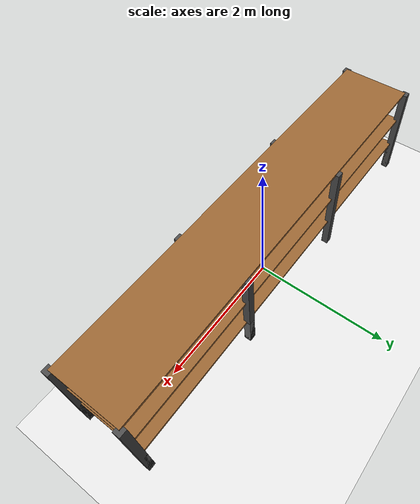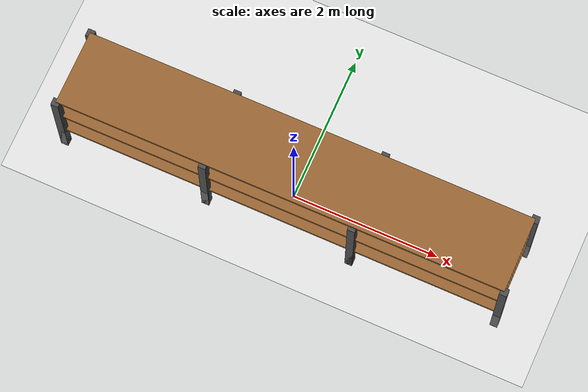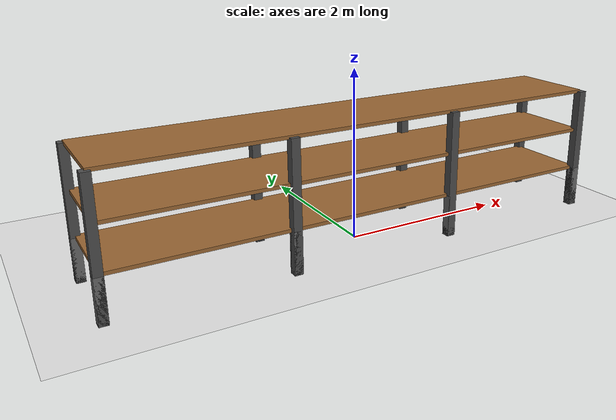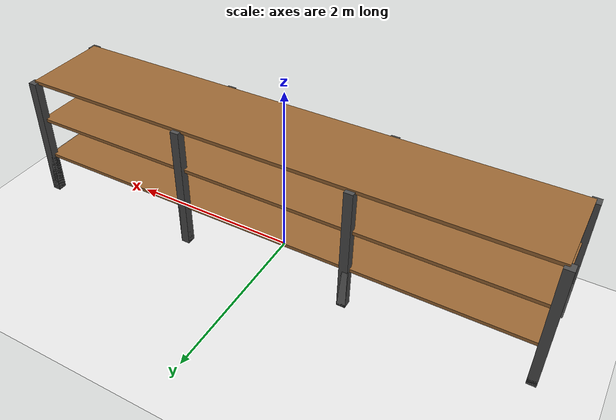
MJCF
<mujoco model="single_rack">
  <!-- визуальные настройки -->
  <visual>
    <global glow="0.4"/>
  </visual>
  <option>
    <flag gravity="enable"/>
  </option>

  <worldbody>
    <!-- свет сверху -->
    <light name="top_light" pos="0 0 2" directional="false" diffuse="0.8 0.8 0.8"/>

    <!-- пол -->
    <geom name="floor" type="plane" size="20 10 0.1" rgba="0.9 0.9 0.9 1"/>

    <!-- ПОЛКИ -->
    <!-- нижняя полка (длинная) -->
    <geom name="shelf_bottom" type="box"
          pos="0 0 0.5" size="3.0 0.5 0.02" rgba="0.6 0.4 0.2 1"/>

    <!-- верхняя полка (длинная) -->
    <geom name="shelf_top" type="box"
          pos="0 0 1.0" size="3.0 0.5 0.02" rgba="0.6 0.4 0.2 1"/>

    <!-- крыша полка (длинная) -->
    <geom name="shelf_upper_top" type="box"
          pos="0 0 1.5" size="3.0 0.5 0.02" rgba="0.6 0.4 0.2 1"/>

    <!-- 8 стойк, держащих полки -->

    <!-- Передний ряд стоек (держат передний край полок) -->
    <geom name="front_post_1" type="box"
          pos="-3.0  0.5 0.25" size="0.05 0.05 0.25" rgba="0.4 0.4 0.4 1"/>
    <geom name="front_post_2" type="box"
          pos="-1.0  0.5 0.25" size="0.05 0.05 0.25" rgba="0.4 0.4 0.4 1"/>
    <geom name="front_post_3" type="box"
          pos=" 1.0  0.5 0.25" size="0.05 0.05 0.25" rgba="0.4 0.4 0.4 1"/>
    <geom name="front_post_4" type="box"
          pos=" 3.0  0.5 0.25" size="0.05 0.05 0.25" rgba="0.4 0.4 0.4 1"/>

    <!-- Задний ряд стоек (держат задний край полок) -->
    <geom name="back_post_1" type="box"
          pos="-3.0  -0.5 0.25" size="0.05 0.05 0.25" rgba="0.4 0.4 0.4 1"/>
    <geom name="back_post_2" type="box"
          pos="-1.0  -0.5 0.25" size="0.05 0.05 0.25" rgba="0.4 0.4 0.4 1"/>
    <geom name="back_post_3" type="box"
          pos=" 1.0  -0.5 0.25" size="0.05 0.05 0.25" rgba="0.4 0.4 0.4 1"/>
    <geom name="back_post_4" type="box"
          pos=" 3.0  -0.5 0.25" size="0.05 0.05 0.25" rgba="0.4 0.4 0.4 1"/>

    <!-- ВЕРХНИЕ стойки, которые держат верхнюю полку (они потолще и выше) -->
    <!-- передний ряд, верх -->
    <geom name="front_post_1_upper" type="box"
          pos="-3.0  0.5 0.75" size="0.05 0.05 0.75" rgba="0.3 0.3 0.3 1"/>
    <geom name="front_post_2_upper" type="box"
          pos="-1.0  0.5 0.75" size="0.05 0.05 0.75" rgba="0.3 0.3 0.3 1"/>
    <geom name="front_post_3_upper" type="box"
          pos=" 1.0  0.5 0.75" size="0.05 0.05 0.75" rgba="0.3 0.3 0.3 1"/>
    <geom name="front_post_4_upper" type="box"
          pos=" 3.0  0.5 0.75" size="0.05 0.05 0.75" rgba="0.3 0.3 0.3 1"/>

    <!-- задний ряд, верх -->
    <geom name="back_post_1_upper" type="box"
          pos="-3.0  -0.5 0.75" size="0.05 0.05 0.75" rgba="0.3 0.3 0.3 1"/>
    <geom name="back_post_2_upper" type="box"
          pos="-1.0  -0.5 0.75" size="0.05 0.05 0.75" rgba="0.3 0.3 0.3 1"/>
    <geom name="back_post_3_upper" type="box"
          pos=" 1.0  -0.5 0.75" size="0.05 0.05 0.75" rgba="0.3 0.3 0.3 1"/>
    <geom name="back_post_4_upper" type="box"
          pos=" 3.0  -0.5 0.75" size="0.05 0.05 0.75" rgba="0.3 0.3 0.3 1"/>
  </worldbody>
</mujoco>
